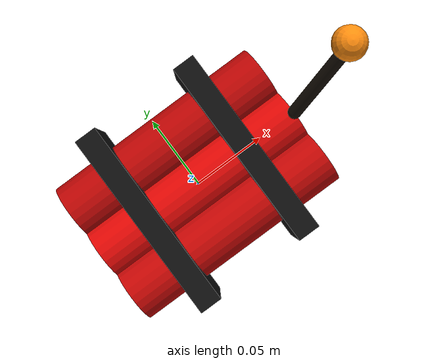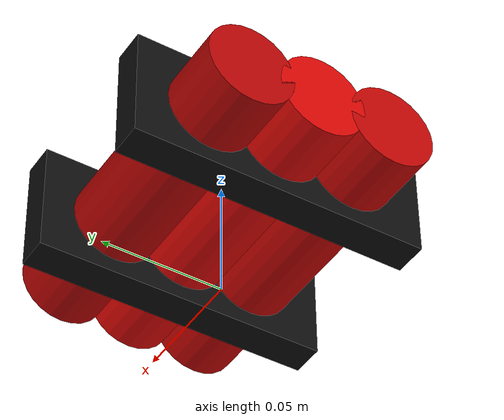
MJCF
<mujoco model="custom_obvious_dynamite_bundle">
  <worldbody>
    <body>
      <body name="object">
        <geom conaffinity="0" contype="0" group="1" pos="0 -0.030 0.040" quat="0.7071068 0 0.7071068 0" rgba="0.78 0.025 0.018 1" size="0.018 0.070" type="cylinder" />
        <geom conaffinity="0" contype="0" group="1" pos="0 0 0.040" quat="0.7071068 0 0.7071068 0" rgba="0.88 0.030 0.020 1" size="0.018 0.070" type="cylinder" />
        <geom conaffinity="0" contype="0" group="1" pos="0 0.030 0.040" quat="0.7071068 0 0.7071068 0" rgba="0.74 0.020 0.015 1" size="0.018 0.070" type="cylinder" />
        <geom conaffinity="0" contype="0" group="1" pos="-0.035 0 0.040" rgba="0.06 0.06 0.06 1" size="0.007 0.061 0.024" type="box" />
        <geom conaffinity="0" contype="0" group="1" pos="0.035 0 0.040" rgba="0.06 0.06 0.06 1" size="0.007 0.061 0.024" type="box" />
        <geom conaffinity="0" contype="0" group="1" fromto="0.070 0.000 0.060 0.105 0.010 0.095" rgba="0.08 0.055 0.025 1" size="0.004" type="capsule" />
        <geom conaffinity="0" contype="0" group="1" pos="0.110 0.012 0.098" rgba="1.0 0.55 0.05 1" size="0.010" type="sphere" />
        <geom density="100" friction="0.95 0.3 0.1" group="0" pos="0 0 0.040" rgba="0.8 0.8 0.8 0.0" size="0.088 0.060 0.035" type="box" />
        <geom
          name="reg_bbox"
          conaffinity="0"
          contype="0"
          group="3"
          pos="0.0000 0.0000 0.0600"
          rgba="0 0 0 0"
          size="0.1160 0.0640 0.0600"
          type="box"
        />
      </body>
      <site rgba="0 0 0 0" size="0.005" pos="0 0 0" name="bottom_site" />
      <site rgba="0 0 0 0" size="0.005" pos="0 0 0.1200" name="top_site" />
      <site rgba="0 0 0 0" size="0.005" pos="0.1160 0.1160 0" name="horizontal_radius_site" />
    </body>
  </worldbody>
</mujoco>
